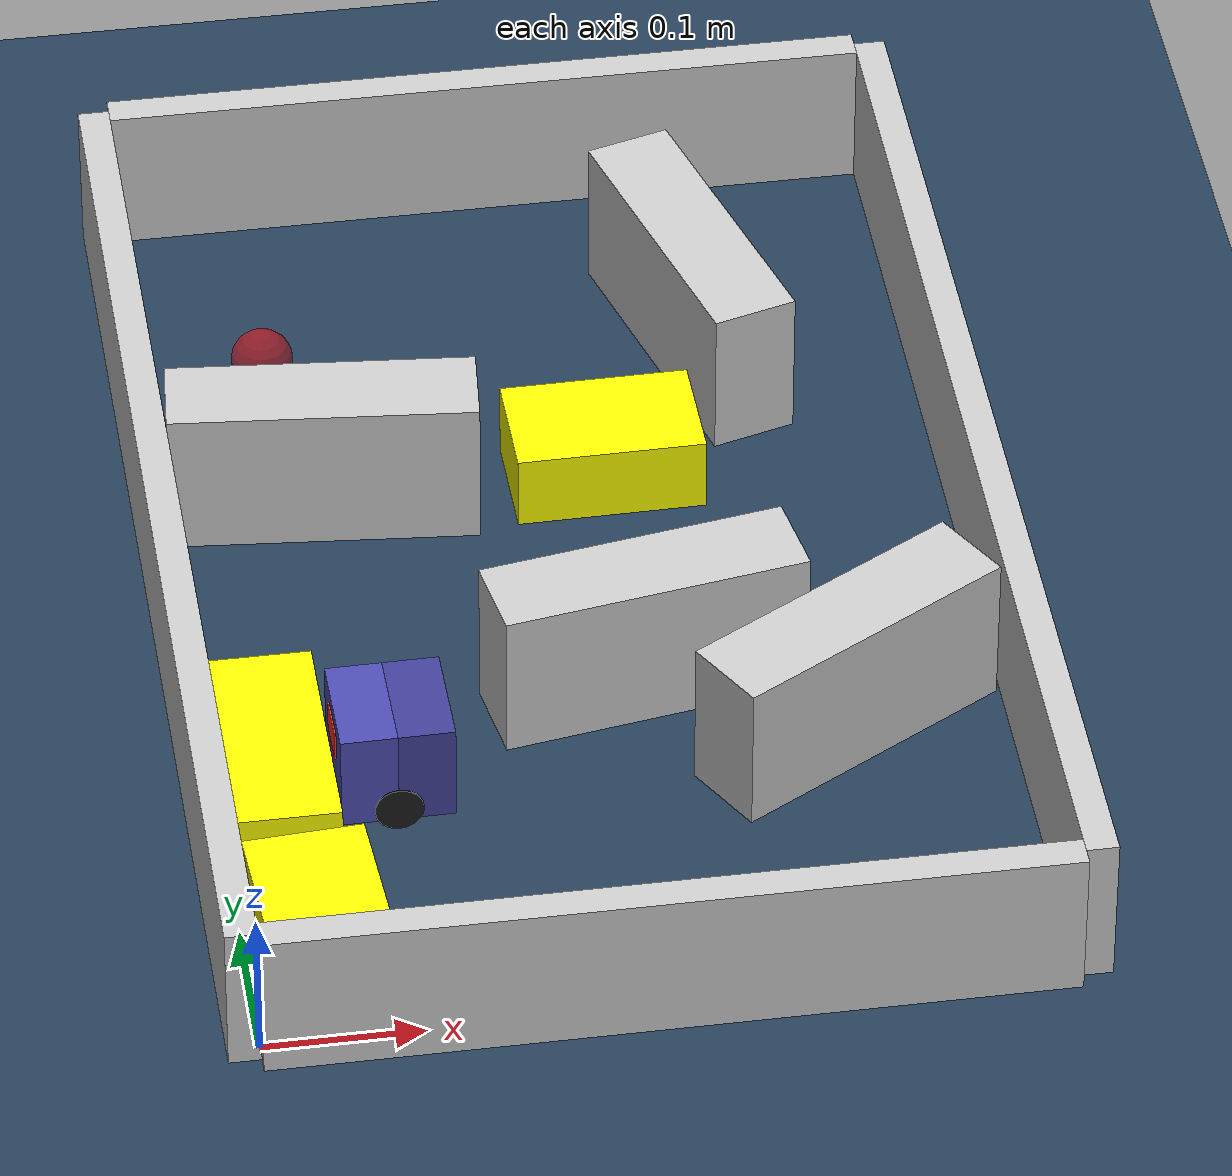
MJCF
<?xml version='1.0' encoding='utf-8'?>
<mujoco model="real_buildable">
  <compiler angle="degree" />
  <option timestep="0.002" integrator="implicitfast" iterations="100" cone="elliptic" />
  <default>
    <geom density="1" />
  </default>
  <asset>
    <texture builtin="gradient" height="3072" rgb1="0.3 0.5 0.7" rgb2="0 0 0" type="skybox" width="512" />
    <texture builtin="checker" height="300" mark="edge" markrgb="0.8 0.8 0.8" name="groundplane" rgb1="0.2 0.3 0.4" rgb2="0.1 0.2 0.3" type="2d" width="300" />
    <material name="groundplane" reflectance="0.2" texrepeat="5 5" texture="groundplane" texuniform="true" />
  </asset>
  <worldbody>
    <light dir="0 0 -1" directional="true" pos="0 0 1.5" />
    <geom name="floor" type="plane" condim="4" friction="0.5 0.005 0.001" material="groundplane" size="0 0 0.05" />
    <body name="walls">
      <geom name="wall_boundary_left" type="box" condim="4" friction="1.0 0.005 0.0001" rgba="0.8 0.8 0.8 1" pos="-0.010000 0.387500 0.050000" euler="0 0 0.000000" size="0.010000 0.397500 0.050000" />
      <geom name="wall_boundary_right" type="box" condim="4" friction="1.0 0.005 0.0001" rgba="0.8 0.8 0.8 1" pos="0.500000 0.387500 0.050000" euler="0 0 0.000000" size="0.010000 0.397500 0.050000" />
      <geom name="wall_boundary_bottom" type="box" condim="4" friction="1.0 0.005 0.0001" rgba="0.8 0.8 0.8 1" pos="0.245000 -0.010000 0.050000" euler="0 0 0.000000" size="0.245000 0.010000 0.050000" />
      <geom name="wall_boundary_top" type="box" condim="4" friction="1.0 0.005 0.0001" rgba="0.8 0.8 0.8 1" pos="0.245000 0.785000 0.050000" euler="0 0 0.000000" size="0.245000 0.010000 0.050000" />
      <geom name="wall_inner_1" type="box" condim="4" friction="1.0 0.005 0.0001" rgba="0.8 0.8 0.8 1" pos="0.273309 0.283933 0.050000" euler="0 0 9.554505" size="0.097500 0.027500 0.050000" />
      <geom name="wall_inner_2" type="box" condim="4" friction="1.0 0.005 0.0001" rgba="0.8 0.8 0.8 1" pos="0.389595 0.225520 0.050000" euler="0 0 29.981113" size="0.097500 0.027500 0.050000" />
      <geom name="wall_inner_3" type="box" condim="4" friction="1.0 0.005 0.0001" rgba="0.8 0.8 0.8 1" pos="0.100000 0.481000 0.050000" euler="0 0 174.900000" size="0.097500 0.027500 0.050000" />
      <geom name="wall_inner_4" type="box" condim="4" friction="1.0 0.005 0.0001" rgba="0.8 0.8 0.8 1" pos="0.354000 0.611000 0.050000" euler="0 0 105.800000" size="0.097500 0.027500 0.050000" />
    </body>
    <body name="car" pos="0.10591443621875588 0.20636218103804596 0.01" quat="0.0046007875706528039 0 0 -0.99998941632085769">
      <freejoint name="car_freejoint" />
      <inertial pos="0 0 0.0375" mass="0.35" diaginertia="0.000266 0.000266 0.000286" />
      <geom name="front_chassis_collision" type="box" pos="0.0175 0 0.0375" size="0.0175 0.035 0.0325" rgba="0.3 0.3 0.7 1" />
      <geom name="rear_chassis_collision" type="box" pos="-0.0175 0 0.0375" size="0.0175 0.035 0.0325" rgba="0.25 0.25 0.6 1" />
      <geom name="front_marker" type="box" pos="0.034 0 0.0505" size="0.002 0.015 0.01" rgba="1 0.2 0.2 1" contype="0" conaffinity="0" />
      <body name="rear_support_body" pos="-0.03 0 0.0025">
        <joint name="rear_caster_joint" type="ball" damping="0.0001" />
        <inertial pos="0 0 0" mass="0.025" diaginertia="0.000001 0.000001 0.000001" />
        <geom name="rear_support" type="sphere" pos="0 0 0" size="0.0025" friction="0 0 0" rgba="0.7 0.1 0.1 1" />
      </body>
      <body name="front_support_body" pos="0.03 0 0.0025">
        <joint name="front_caster_joint" type="ball" damping="0.0001" />
        <inertial pos="0 0 0" mass="0.025" diaginertia="0.000001 0.000001 0.000001" />
        <geom name="front_support" type="sphere" pos="0 0 0" size="0.0025" friction="0 0 0" rgba="0.1 0.7 0.1 1" />
      </body>
      <body name="left_wheel" pos="0 0.0375 0.015">
        <inertial pos="0 0 0" mass="0.05" diaginertia="0.000003 0.000006 0.000003" />
        <joint name="left_wheel_joint" type="hinge" axis="0 1 0" damping="0.01" armature="0.0001" />
        <geom name="left_wheel_collision" type="cylinder" size="0.015 0.0005" euler="90 0 0" rgba="0.1 0.1 0.1 1" />
      </body>
      <body name="right_wheel" pos="0 -0.0375 0.015">
        <inertial pos="0 0 0" mass="0.05" diaginertia="0.000003 0.000006 0.000003" />
        <joint name="right_wheel_joint" type="hinge" axis="0 1 0" damping="0.01" armature="0.0001" />
        <geom name="right_wheel_collision" type="cylinder" size="0.015 0.0005" euler="90 0 0" rgba="0.1 0.1 0.1 1" />
      </body>
    </body>
    <body name="obstacle_0_movable">
      <geom name="obstacle_0_movable" condim="4" pos="0.034982067347553165 0.22949086891900725 0.02" friction="1 0.005 0.0001" rgba="1 1 0 1" size="0.035000 0.075000 0.020000" type="box" mass="0.1" quat="3.9905522229006111e-05 0 0 0.99999999920377469" />
      <joint type="free" />
    </body>
    <body name="obstacle_1_movable">
      <geom name="obstacle_1_movable" condim="4" pos="0.27900000000000025 0.49000000000000032 0.025000000000000001" friction="1 0.005 0.0001" rgba="1 1 0 1" size="0.037500 0.060000 0.025000" type="box" mass="0.1" quat="0.71079947387299236 0 0 -0.70339470281050398" />
      <joint type="free" />
    </body>
    <body name="obstacle_2_movable">
      <geom name="obstacle_2_movable" condim="4" pos="0.046624999999999965 0.069431999999999883 0.025000000000000001" friction="1 0.005 0.0001" rgba="1 1 0 1" size="0.037500 0.060000 0.025000" type="box" mass="0.1" quat="0.99949082661223987 0 0 0.031907483730020315" />
      <joint type="free" />
    </body>
    <site name="goal" type="sphere" pos="0.080000 0.640000 0.0" size="0.02" rgba="1 0 0 0.5" />
  </worldbody>
  <actuator>
    <velocity name="left_wheel_drive" joint="left_wheel_joint" ctrlrange="-25 25" kv="0.75" forcerange="-0.5 0.5" />
    <velocity name="right_wheel_drive" joint="right_wheel_joint" ctrlrange="-25 25" kv="0.75" forcerange="-0.5 0.5" />
  </actuator>
</mujoco>
